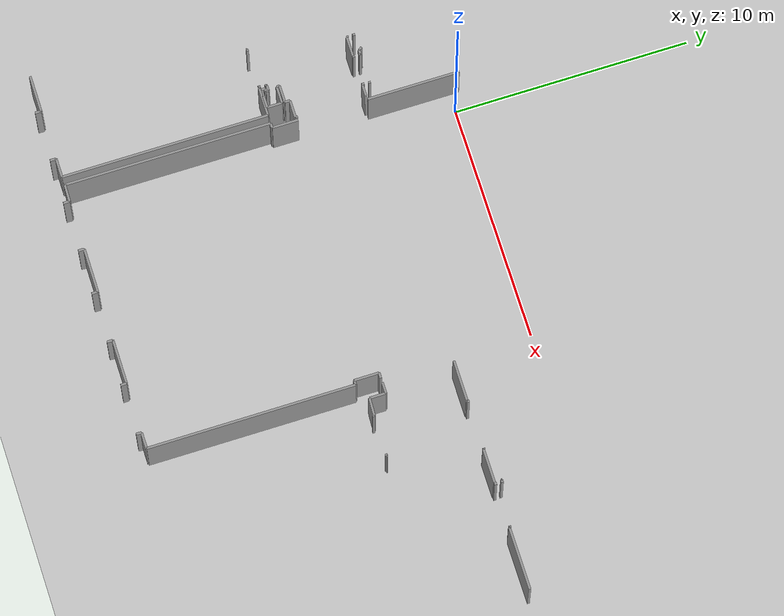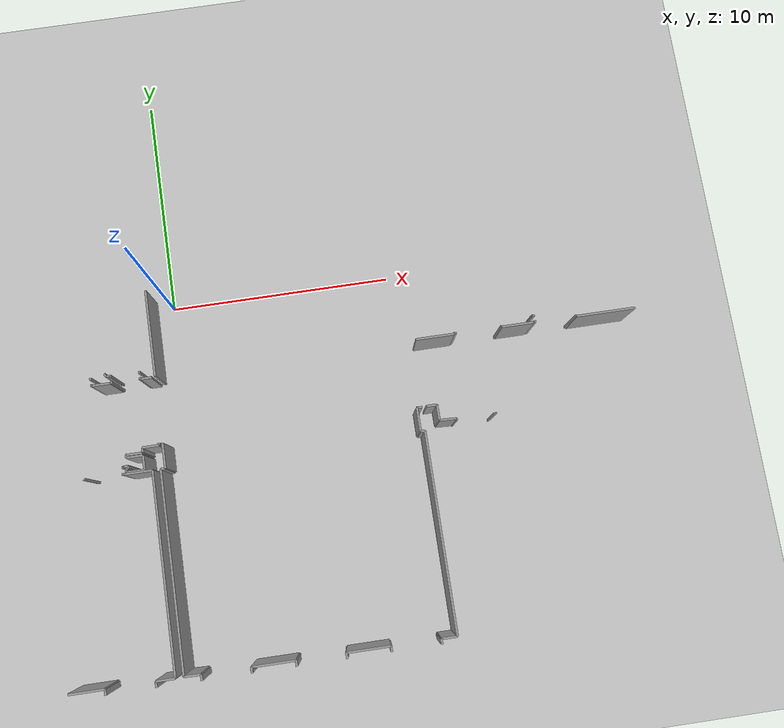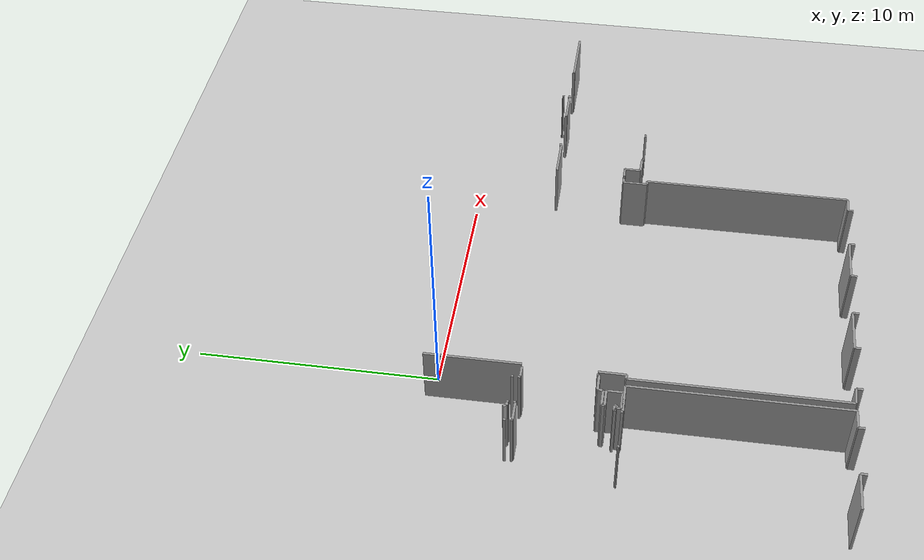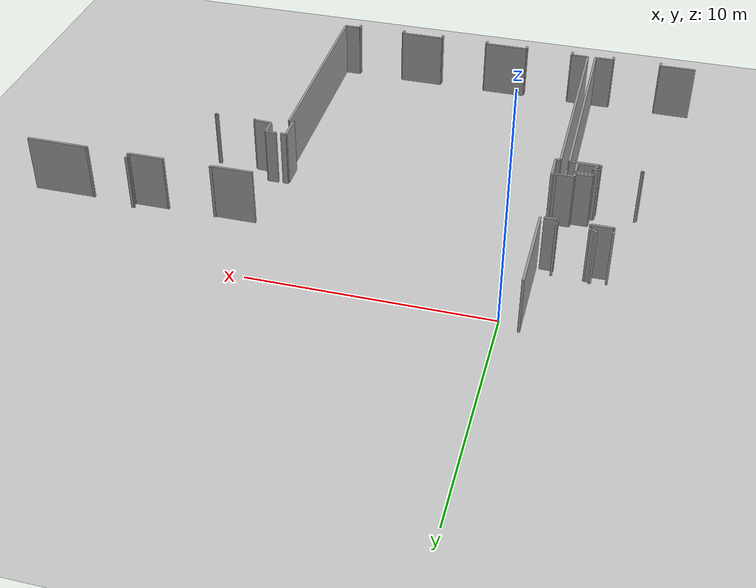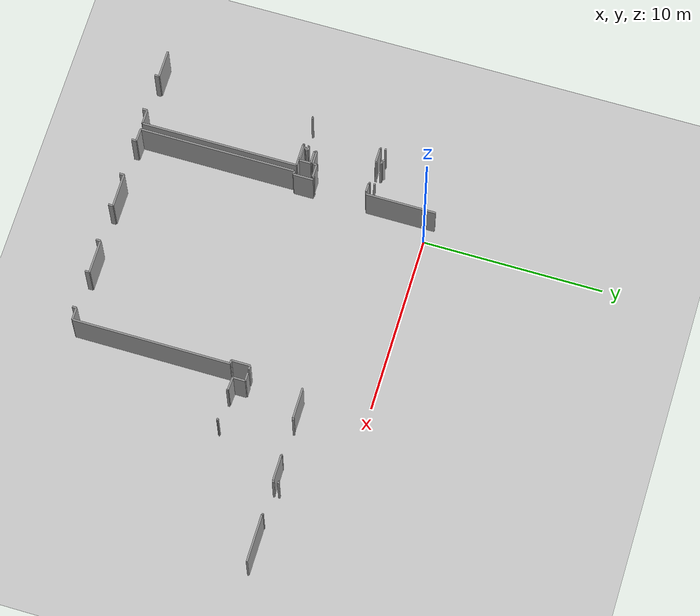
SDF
<sdf version="1.6">
 <world name="default">
  <model name="ground_plane">
   <static>1</static>
   <link name="link">
    <collision name="collision">
     <geometry><plane><normal>0 0 1</normal><size>100 100</size></plane></geometry>
     <surface><friction><ode><mu>100</mu><mu2>50</mu2></ode></friction></surface>
    </collision>
    <visual name="visual">
     <cast_shadows>0</cast_shadows>
     <geometry><plane><normal>0 0 1</normal><size>100 100</size></plane></geometry>
     <material>
      <script><uri>file://media/materials/scripts/gazebo.material</uri><name>Gazebo/Grey</name></script>
     </material>
    </visual>
   </link>
  </model>
  <model name="0510032261_A_40_1_103">
   <static>1</static>
   <link name="Wall_176">
    <collision name="Wall_176_Collision">
     <geometry><box><size>0.0726810673443 0.1 2.5</size></box></geometry>
     <pose>0.0363405336722 0 1.25 0 0 0</pose>
    </collision>
    <visual name="Wall_176_Visual">
     <pose>0.0363405336722 0 1.25 0 0 0</pose>
     <geometry><box><size>0.0726810673443 0.1 2.5</size></box></geometry>
     <material>
      <script><uri>file://media/materials/scripts/gazebo.material</uri><name>Gazebo/Grey</name></script>
      <ambient>1 1 1 1</ambient>
     </material>
    </visual>
    <pose>46.4780177891 -23.7904701398 0 0 0 0.0</pose>
   </link>
   <link name="Wall_177">
    <collision name="Wall_177_Collision">
     <geometry><box><size>0.0274459974587 0.1 2.5</size></box></geometry>
     <pose>0.0137229987294 0 1.25 0 0 0</pose>
    </collision>
    <visual name="Wall_177_Visual">
     <pose>0.0137229987294 0 1.25 0 0 0</pose>
     <geometry><box><size>0.0274459974587 0.1 2.5</size></box></geometry>
     <material>
      <script><uri>file://media/materials/scripts/gazebo.material</uri><name>Gazebo/Grey</name></script>
      <ambient>1 1 1 1</ambient>
     </material>
    </visual>
    <pose>46.5506988564 -23.7904701398 0 0 0 1.57079632679</pose>
   </link>
   <link name="Wall_178">
    <collision name="Wall_178_Collision">
     <geometry><box><size>0.203430749682 0.1 2.5</size></box></geometry>
     <pose>0.101715374841 0 1.25 0 0 0</pose>
    </collision>
    <visual name="Wall_178_Visual">
     <pose>0.101715374841 0 1.25 0 0 0</pose>
     <geometry><box><size>0.203430749682 0.1 2.5</size></box></geometry>
     <material>
      <script><uri>file://media/materials/scripts/gazebo.material</uri><name>Gazebo/Grey</name></script>
      <ambient>1 1 1 1</ambient>
     </material>
    </visual>
    <pose>46.5506988564 -23.7630241423 0 0 0 0.0</pose>
   </link>
   <link name="Wall_179">
    <collision name="Wall_179_Collision">
     <geometry><box><size>0.101778907243 0.1 2.5</size></box></geometry>
     <pose>0.0508894536213 0 1.25 0 0 0</pose>
    </collision>
    <visual name="Wall_179_Visual">
     <pose>0.0508894536213 0 1.25 0 0 0</pose>
     <geometry><box><size>0.101778907243 0.1 2.5</size></box></geometry>
     <material>
      <script><uri>file://media/materials/scripts/gazebo.material</uri><name>Gazebo/Grey</name></script>
      <ambient>1 1 1 1</ambient>
     </material>
    </visual>
    <pose>46.7541296061 -23.7630241423 0 0 0 -1.57079632679</pose>
   </link>
   <link name="Wall_180">
    <collision name="Wall_180_Collision">
     <geometry><box><size>0.109021601017 0.1 2.5</size></box></geometry>
     <pose>0.0545108005083 0 1.25 0 0 0</pose>
    </collision>
    <visual name="Wall_180_Visual">
     <pose>0.0545108005083 0 1.25 0 0 0</pose>
     <geometry><box><size>0.109021601017 0.1 2.5</size></box></geometry>
     <material>
      <script><uri>file://media/materials/scripts/gazebo.material</uri><name>Gazebo/Grey</name></script>
      <ambient>1 1 1 1</ambient>
     </material>
    </visual>
    <pose>46.7541296061 -23.8648030496 0 0 0 3.14159265359</pose>
   </link>
   <link name="Wall_181">
    <collision name="Wall_181_Collision">
     <geometry><box><size>0.159847522236 0.1 2.5</size></box></geometry>
     <pose>0.0799237611182 0 1.25 0 0 0</pose>
    </collision>
    <visual name="Wall_181_Visual">
     <pose>0.0799237611182 0 1.25 0 0 0</pose>
     <geometry><box><size>0.159847522236 0.1 2.5</size></box></geometry>
     <material>
      <script><uri>file://media/materials/scripts/gazebo.material</uri><name>Gazebo/Grey</name></script>
      <ambient>1 1 1 1</ambient>
     </material>
    </visual>
    <pose>46.6451080051 -23.8648030496 0 0 0 -1.57079632679</pose>
   </link>
   <link name="Wall_182">
    <collision name="Wall_182_Collision">
     <geometry><box><size>0.791867852605 0.1 2.5</size></box></geometry>
     <pose>0.395933926302 0 1.25 0 0 0</pose>
    </collision>
    <visual name="Wall_182_Visual">
     <pose>0.395933926302 0 1.25 0 0 0</pose>
     <geometry><box><size>0.791867852605 0.1 2.5</size></box></geometry>
     <material>
      <script><uri>file://media/materials/scripts/gazebo.material</uri><name>Gazebo/Grey</name></script>
      <ambient>1 1 1 1</ambient>
     </material>
    </visual>
    <pose>46.6451080051 -24.0246505718 0 0 0 0.0</pose>
   </link>
   <link name="Wall_183">
    <collision name="Wall_183_Collision">
     <geometry><box><size>0.632147395172 0.1 2.5</size></box></geometry>
     <pose>0.316073697586 0 1.25 0 0 0</pose>
    </collision>
    <visual name="Wall_183_Visual">
     <pose>0.316073697586 0 1.25 0 0 0</pose>
     <geometry><box><size>0.632147395172 0.1 2.5</size></box></geometry>
     <material>
      <script><uri>file://media/materials/scripts/gazebo.material</uri><name>Gazebo/Grey</name></script>
      <ambient>1 1 1 1</ambient>
     </material>
    </visual>
    <pose>47.4369758577 -24.0246505718 0 0 0 1.57079632679</pose>
   </link>
   <link name="Wall_184">
    <collision name="Wall_184_Collision">
     <geometry><box><size>0.726429479034 0.1 2.5</size></box></geometry>
     <pose>0.363214739517 0 1.25 0 0 0</pose>
    </collision>
    <visual name="Wall_184_Visual">
     <pose>0.363214739517 0 1.25 0 0 0</pose>
     <geometry><box><size>0.726429479034 0.1 2.5</size></box></geometry>
     <material>
      <script><uri>file://media/materials/scripts/gazebo.material</uri><name>Gazebo/Grey</name></script>
      <ambient>1 1 1 1</ambient>
     </material>
    </visual>
    <pose>47.4369758577 -23.3925031766 0 0 0 3.14159265359</pose>
   </link>
   <link name="Wall_185">
    <collision name="Wall_185_Collision">
     <geometry><box><size>0.11626429479 0.1 2.5</size></box></geometry>
     <pose>0.0581321473952 0 1.25 0 0 0</pose>
    </collision>
    <visual name="Wall_185_Visual">
     <pose>0.0581321473952 0 1.25 0 0 0</pose>
     <geometry><box><size>0.11626429479 0.1 2.5</size></box></geometry>
     <material>
      <script><uri>file://media/materials/scripts/gazebo.material</uri><name>Gazebo/Grey</name></script>
      <ambient>1 1 1 1</ambient>
     </material>
    </visual>
    <pose>46.7105463787 -23.3925031766 0 0 0 1.57079632679</pose>
   </link>
   <link name="Wall_186">
    <collision name="Wall_186_Collision">
     <geometry><box><size>0.726429479034 0.1 2.5</size></box></geometry>
     <pose>0.363214739517 0 1.25 0 0 0</pose>
    </collision>
    <visual name="Wall_186_Visual">
     <pose>0.363214739517 0 1.25 0 0 0</pose>
     <geometry><box><size>0.726429479034 0.1 2.5</size></box></geometry>
     <material>
      <script><uri>file://media/materials/scripts/gazebo.material</uri><name>Gazebo/Grey</name></script>
      <ambient>1 1 1 1</ambient>
     </material>
    </visual>
    <pose>46.7105463787 -23.2762388818 0 0 0 0.0</pose>
   </link>
   <link name="Wall_187">
    <collision name="Wall_187_Collision">
     <geometry><box><size>0.21791613723 0.1 2.5</size></box></geometry>
     <pose>0.108958068615 0 1.25 0 0 0</pose>
    </collision>
    <visual name="Wall_187_Visual">
     <pose>0.108958068615 0 1.25 0 0 0</pose>
     <geometry><box><size>0.21791613723 0.1 2.5</size></box></geometry>
     <material>
      <script><uri>file://media/materials/scripts/gazebo.material</uri><name>Gazebo/Grey</name></script>
      <ambient>1 1 1 1</ambient>
     </material>
    </visual>
    <pose>47.4369758577 -23.2762388818 0 0 0 1.57079632679</pose>
   </link>
   <link name="Wall_188">
    <collision name="Wall_188_Collision">
     <geometry><box><size>0.746124523507 0.1 2.5</size></box></geometry>
     <pose>0.373062261753 0 1.25 0 0 0</pose>
    </collision>
    <visual name="Wall_188_Visual">
     <pose>0.373062261753 0 1.25 0 0 0</pose>
     <geometry><box><size>0.746124523507 0.1 2.5</size></box></geometry>
     <material>
      <script><uri>file://media/materials/scripts/gazebo.material</uri><name>Gazebo/Grey</name></script>
      <ambient>1 1 1 1</ambient>
     </material>
    </visual>
    <pose>47.4369758577 -23.0583227446 0 0 0 0.0</pose>
   </link>
   <link name="Wall_189">
    <collision name="Wall_189_Collision">
     <geometry><box><size>0.0987293519695 0.1 2.5</size></box></geometry>
     <pose>0.0493646759847 0 1.25 0 0 0</pose>
    </collision>
    <visual name="Wall_189_Visual">
     <pose>0.0493646759847 0 1.25 0 0 0</pose>
     <geometry><box><size>0.0987293519695 0.1 2.5</size></box></geometry>
     <material>
      <script><uri>file://media/materials/scripts/gazebo.material</uri><name>Gazebo/Grey</name></script>
      <ambient>1 1 1 1</ambient>
     </material>
    </visual>
    <pose>48.1831003812 -23.0583227446 0 0 0 1.57079632679</pose>
   </link>
   <link name="Wall_190">
    <collision name="Wall_190_Collision">
     <geometry><box><size>0.477890724269 0.1 2.5</size></box></geometry>
     <pose>0.238945362135 0 1.25 0 0 0</pose>
    </collision>
    <visual name="Wall_190_Visual">
     <pose>0.238945362135 0 1.25 0 0 0</pose>
     <geometry><box><size>0.477890724269 0.1 2.5</size></box></geometry>
     <material>
      <script><uri>file://media/materials/scripts/gazebo.material</uri><name>Gazebo/Grey</name></script>
      <ambient>1 1 1 1</ambient>
     </material>
    </visual>
    <pose>48.1831003812 -20.0550190597 0 0 0 3.14159265359</pose>
   </link>
   <link name="Wall_191">
    <collision name="Wall_191_Collision">
     <geometry><box><size>0.033418043202 0.1 2.5</size></box></geometry>
     <pose>0.016709021601 0 1.25 0 0 0</pose>
    </collision>
    <visual name="Wall_191_Visual">
     <pose>0.016709021601 0 1.25 0 0 0</pose>
     <geometry><box><size>0.033418043202 0.1 2.5</size></box></geometry>
     <material>
      <script><uri>file://media/materials/scripts/gazebo.material</uri><name>Gazebo/Grey</name></script>
      <ambient>1 1 1 1</ambient>
     </material>
    </visual>
    <pose>47.7052096569 -20.0550190597 0 0 0 1.57079632679</pose>
   </link>
   <link name="Wall_192">
    <collision name="Wall_192_Collision">
     <geometry><box><size>0.0955527318933 0.1 2.5</size></box></geometry>
     <pose>0.0477763659466 0 1.25 0 0 0</pose>
    </collision>
    <visual name="Wall_192_Visual">
     <pose>0.0477763659466 0 1.25 0 0 0</pose>
     <geometry><box><size>0.0955527318933 0.1 2.5</size></box></geometry>
     <material>
      <script><uri>file://media/materials/scripts/gazebo.material</uri><name>Gazebo/Grey</name></script>
      <ambient>1 1 1 1</ambient>
     </material>
    </visual>
    <pose>47.7052096569 -20.0216010165 0 0 0 3.14159265359</pose>
   </link>
   <link name="Wall_193">
    <collision name="Wall_193_Collision">
     <geometry><box><size>0.0758576874206 0.1 2.5</size></box></geometry>
     <pose>0.0379288437103 0 1.25 0 0 0</pose>
    </collision>
    <visual name="Wall_193_Visual">
     <pose>0.0379288437103 0 1.25 0 0 0</pose>
     <geometry><box><size>0.0758576874206 0.1 2.5</size></box></geometry>
     <material>
      <script><uri>file://media/materials/scripts/gazebo.material</uri><name>Gazebo/Grey</name></script>
      <ambient>1 1 1 1</ambient>
     </material>
    </visual>
    <pose>46.4513341804 -20.0216010165 0 0 0 3.14159265359</pose>
   </link>
   <link name="Wall_194">
    <collision name="Wall_194_Collision">
     <geometry><box><size>0.0283354510801 0.1 2.5</size></box></geometry>
     <pose>0.01416772554 0 1.25 0 0 0</pose>
    </collision>
    <visual name="Wall_194_Visual">
     <pose>0.01416772554 0 1.25 0 0 0</pose>
     <geometry><box><size>0.0283354510801 0.1 2.5</size></box></geometry>
     <material>
      <script><uri>file://media/materials/scripts/gazebo.material</uri><name>Gazebo/Grey</name></script>
      <ambient>1 1 1 1</ambient>
     </material>
    </visual>
    <pose>46.375476493 -20.0216010165 0 0 0 -1.57079632679</pose>
   </link>
   <link name="Wall_195">
    <collision name="Wall_195_Collision">
     <geometry><box><size>0.82706480305 0.1 2.5</size></box></geometry>
     <pose>0.413532401525 0 1.25 0 0 0</pose>
    </collision>
    <visual name="Wall_195_Visual">
     <pose>0.413532401525 0 1.25 0 0 0</pose>
     <geometry><box><size>0.82706480305 0.1 2.5</size></box></geometry>
     <material>
      <script><uri>file://media/materials/scripts/gazebo.material</uri><name>Gazebo/Grey</name></script>
      <ambient>1 1 1 1</ambient>
     </material>
    </visual>
    <pose>46.375476493 -20.0499364676 0 0 0 3.14159265359</pose>
   </link>
   <link name="Wall_196">
    <collision name="Wall_196_Collision">
     <geometry><box><size>0.0325285895807 0.1 2.5</size></box></geometry>
     <pose>0.0162642947903 0 1.25 0 0 0</pose>
    </collision>
    <visual name="Wall_196_Visual">
     <pose>0.0162642947903 0 1.25 0 0 0</pose>
     <geometry><box><size>0.0325285895807 0.1 2.5</size></box></geometry>
     <material>
      <script><uri>file://media/materials/scripts/gazebo.material</uri><name>Gazebo/Grey</name></script>
      <ambient>1 1 1 1</ambient>
     </material>
    </visual>
    <pose>45.54841169 -20.0499364676 0 0 0 1.57079632679</pose>
   </link>
   <link name="Wall_197">
    <collision name="Wall_197_Collision">
     <geometry><box><size>0.0650571791614 0.1 2.5</size></box></geometry>
     <pose>0.0325285895807 0 1.25 0 0 0</pose>
    </collision>
    <visual name="Wall_197_Visual">
     <pose>0.0325285895807 0 1.25 0 0 0</pose>
     <geometry><box><size>0.0650571791614 0.1 2.5</size></box></geometry>
     <material>
      <script><uri>file://media/materials/scripts/gazebo.material</uri><name>Gazebo/Grey</name></script>
      <ambient>1 1 1 1</ambient>
     </material>
    </visual>
    <pose>45.54841169 -20.017407878 0 0 0 3.14159265359</pose>
   </link>
   <link name="Wall_294">
    <collision name="Wall_294_Collision">
     <geometry><box><size>0.0330368487929 0.1 2.5</size></box></geometry>
     <pose>0.0165184243964 0 1.25 0 0 0</pose>
    </collision>
    <visual name="Wall_294_Visual">
     <pose>0.0165184243964 0 1.25 0 0 0</pose>
     <geometry><box><size>0.0330368487929 0.1 2.5</size></box></geometry>
     <material>
      <script><uri>file://media/materials/scripts/gazebo.material</uri><name>Gazebo/Grey</name></script>
      <ambient>1 1 1 1</ambient>
     </material>
    </visual>
    <pose>44.8108005083 -24.1041931385 0 0 0 1.57079632679</pose>
   </link>
   <link name="Wall_295">
    <collision name="Wall_295_Collision">
     <geometry><box><size>0.0955527318932 0.1 2.5</size></box></geometry>
     <pose>0.0477763659466 0 1.25 0 0 0</pose>
    </collision>
    <visual name="Wall_295_Visual">
     <pose>0.0477763659466 0 1.25 0 0 0</pose>
     <geometry><box><size>0.0955527318932 0.1 2.5</size></box></geometry>
     <material>
      <script><uri>file://media/materials/scripts/gazebo.material</uri><name>Gazebo/Grey</name></script>
      <ambient>1 1 1 1</ambient>
     </material>
    </visual>
    <pose>44.8108005083 -24.0711562897 0 0 0 0.0</pose>
   </link>
   <link name="Wall_296">
    <collision name="Wall_296_Collision">
     <geometry><box><size>0.0902160101652 0.1 2.5</size></box></geometry>
     <pose>0.0451080050826 0 1.25 0 0 0</pose>
    </collision>
    <visual name="Wall_296_Visual">
     <pose>0.0451080050826 0 1.25 0 0 0</pose>
     <geometry><box><size>0.0902160101652 0.1 2.5</size></box></geometry>
     <material>
      <script><uri>file://media/materials/scripts/gazebo.material</uri><name>Gazebo/Grey</name></script>
      <ambient>1 1 1 1</ambient>
     </material>
    </visual>
    <pose>46.4510800508 -24.0711562897 0 0 0 0.0</pose>
   </link>
   <link name="Wall_297">
    <collision name="Wall_297_Collision">
     <geometry><box><size>0.0208386277001 0.1 2.5</size></box></geometry>
     <pose>0.0104193138501 0 1.25 0 0 0</pose>
    </collision>
    <visual name="Wall_297_Visual">
     <pose>0.0104193138501 0 1.25 0 0 0</pose>
     <geometry><box><size>0.0208386277001 0.1 2.5</size></box></geometry>
     <material>
      <script><uri>file://media/materials/scripts/gazebo.material</uri><name>Gazebo/Grey</name></script>
      <ambient>1 1 1 1</ambient>
     </material>
    </visual>
    <pose>46.541296061 -24.0711562897 0 0 0 -1.57079632679</pose>
   </link>
   <link name="Wall_298">
    <collision name="Wall_298_Collision">
     <geometry><box><size>1.23024142313 0.1 2.5</size></box></geometry>
     <pose>0.615120711563 0 1.25 0 0 0</pose>
    </collision>
    <visual name="Wall_298_Visual">
     <pose>0.615120711563 0 1.25 0 0 0</pose>
     <geometry><box><size>1.23024142313 0.1 2.5</size></box></geometry>
     <material>
      <script><uri>file://media/materials/scripts/gazebo.material</uri><name>Gazebo/Grey</name></script>
      <ambient>1 1 1 1</ambient>
     </material>
    </visual>
    <pose>46.541296061 -24.0919949174 0 0 0 0.0</pose>
   </link>
   <link name="Wall_299">
    <collision name="Wall_299_Collision">
     <geometry><box><size>8.71867852605 0.1 2.5</size></box></geometry>
     <pose>4.35933926302 0 1.25 0 0 0</pose>
    </collision>
    <visual name="Wall_299_Visual">
     <pose>4.35933926302 0 1.25 0 0 0</pose>
     <geometry><box><size>8.71867852605 0.1 2.5</size></box></geometry>
     <material>
      <script><uri>file://media/materials/scripts/gazebo.material</uri><name>Gazebo/Grey</name></script>
      <ambient>1 1 1 1</ambient>
     </material>
    </visual>
    <pose>47.7715374841 -24.0919949174 0 0 0 -1.57079632679</pose>
   </link>
   <link name="Wall_300">
    <collision name="Wall_300_Collision">
     <geometry><box><size>0.813214739517 0.1 2.5</size></box></geometry>
     <pose>0.406607369759 0 1.25 0 0 0</pose>
    </collision>
    <visual name="Wall_300_Visual">
     <pose>0.406607369759 0 1.25 0 0 0</pose>
     <geometry><box><size>0.813214739517 0.1 2.5</size></box></geometry>
     <material>
      <script><uri>file://media/materials/scripts/gazebo.material</uri><name>Gazebo/Grey</name></script>
      <ambient>1 1 1 1</ambient>
     </material>
    </visual>
    <pose>47.7715374841 -32.8106734435 0 0 0 3.14159265359</pose>
   </link>
   <link name="Wall_301">
    <collision name="Wall_301_Collision">
     <geometry><box><size>0.257560355781 0.1 2.5</size></box></geometry>
     <pose>0.128780177891 0 1.25 0 0 0</pose>
    </collision>
    <visual name="Wall_301_Visual">
     <pose>0.128780177891 0 1.25 0 0 0</pose>
     <geometry><box><size>0.257560355781 0.1 2.5</size></box></geometry>
     <material>
      <script><uri>file://media/materials/scripts/gazebo.material</uri><name>Gazebo/Grey</name></script>
      <ambient>1 1 1 1</ambient>
     </material>
    </visual>
    <pose>46.9583227446 -32.8106734435 0 0 0 -1.57079632679</pose>
   </link>
   <link name="Wall_302">
    <collision name="Wall_302_Collision">
     <geometry><box><size>0.253621346887 0.1 2.5</size></box></geometry>
     <pose>0.126810673443 0 1.25 0 0 0</pose>
    </collision>
    <visual name="Wall_302_Visual">
     <pose>0.126810673443 0 1.25 0 0 0</pose>
     <geometry><box><size>0.253621346887 0.1 2.5</size></box></geometry>
     <material>
      <script><uri>file://media/materials/scripts/gazebo.material</uri><name>Gazebo/Grey</name></script>
      <ambient>1 1 1 1</ambient>
     </material>
    </visual>
    <pose>44.8331639136 -33.0682337992 0 0 0 1.57079632679</pose>
   </link>
   <link name="Wall_303">
    <collision name="Wall_303_Collision">
     <geometry><box><size>1.55667090216 0.1 2.5</size></box></geometry>
     <pose>0.77833545108 0 1.25 0 0 0</pose>
    </collision>
    <visual name="Wall_303_Visual">
     <pose>0.77833545108 0 1.25 0 0 0</pose>
     <geometry><box><size>1.55667090216 0.1 2.5</size></box></geometry>
     <material>
      <script><uri>file://media/materials/scripts/gazebo.material</uri><name>Gazebo/Grey</name></script>
      <ambient>1 1 1 1</ambient>
     </material>
    </visual>
    <pose>44.8331639136 -32.8146124524 0 0 0 3.14159265359</pose>
   </link>
   <link name="Wall_330">
    <collision name="Wall_330_Collision">
     <geometry><box><size>0.0939008894536 0.1 2.5</size></box></geometry>
     <pose>0.0469504447268 0 1.25 0 0 0</pose>
    </collision>
    <visual name="Wall_330_Visual">
     <pose>0.0469504447268 0 1.25 0 0 0</pose>
     <geometry><box><size>0.0939008894536 0.1 2.5</size></box></geometry>
     <material>
      <script><uri>file://media/materials/scripts/gazebo.material</uri><name>Gazebo/Grey</name></script>
      <ambient>1 1 1 1</ambient>
     </material>
    </visual>
    <pose>45.566454892 -19.7465057179 0 0 0 3.14159265359</pose>
   </link>
   <link name="Wall_346">
    <collision name="Wall_346_Collision">
     <geometry><box><size>0.0903430749682 0.1 2.5</size></box></geometry>
     <pose>0.0451715374841 0 1.25 0 0 0</pose>
    </collision>
    <visual name="Wall_346_Visual">
     <pose>0.0451715374841 0 1.25 0 0 0</pose>
     <geometry><box><size>0.0903430749682 0.1 2.5</size></box></geometry>
     <material>
      <script><uri>file://media/materials/scripts/gazebo.material</uri><name>Gazebo/Grey</name></script>
      <ambient>1 1 1 1</ambient>
     </material>
    </visual>
    <pose>47.708386277 -19.7500635324 0 0 0 3.14159265359</pose>
   </link>
   <link name="Wall_347">
    <collision name="Wall_347_Collision">
     <geometry><box><size>0.0721728081321 0.1 2.5</size></box></geometry>
     <pose>0.0360864040661 0 1.25 0 0 0</pose>
    </collision>
    <visual name="Wall_347_Visual">
     <pose>0.0360864040661 0 1.25 0 0 0</pose>
     <geometry><box><size>0.0721728081321 0.1 2.5</size></box></geometry>
     <material>
      <script><uri>file://media/materials/scripts/gazebo.material</uri><name>Gazebo/Grey</name></script>
      <ambient>1 1 1 1</ambient>
     </material>
    </visual>
    <pose>46.4405336722 -19.7500635324 0 0 0 3.14159265359</pose>
   </link>
   <link name="Wall_348">
    <collision name="Wall_348_Collision">
     <geometry><box><size>0.018043202033 0.1 2.5</size></box></geometry>
     <pose>0.00902160101651 0 1.25 0 0 0</pose>
    </collision>
    <visual name="Wall_348_Visual">
     <pose>0.00902160101651 0 1.25 0 0 0</pose>
     <geometry><box><size>0.018043202033 0.1 2.5</size></box></geometry>
     <material>
      <script><uri>file://media/materials/scripts/gazebo.material</uri><name>Gazebo/Grey</name></script>
      <ambient>1 1 1 1</ambient>
     </material>
    </visual>
    <pose>46.368360864 -19.7500635324 0 0 0 1.57079632679</pose>
   </link>
   <link name="Wall_349">
    <collision name="Wall_349_Collision">
     <geometry><box><size>0.148157560356 0.1 2.5</size></box></geometry>
     <pose>0.0740787801779 0 1.25 0 0 0</pose>
    </collision>
    <visual name="Wall_349_Visual">
     <pose>0.0740787801779 0 1.25 0 0 0</pose>
     <geometry><box><size>0.148157560356 0.1 2.5</size></box></geometry>
     <material>
      <script><uri>file://media/materials/scripts/gazebo.material</uri><name>Gazebo/Grey</name></script>
      <ambient>1 1 1 1</ambient>
     </material>
    </visual>
    <pose>46.368360864 -19.7320203304 0 0 0 3.14159265359</pose>
   </link>
   <link name="Wall_350">
    <collision name="Wall_350_Collision">
     <geometry><box><size>0.15129470091 0.1 2.5</size></box></geometry>
     <pose>0.0756473504552 0 1.25 0 0 0</pose>
    </collision>
    <visual name="Wall_350_Visual">
     <pose>0.0756473504552 0 1.25 0 0 0</pose>
     <geometry><box><size>0.15129470091 0.1 2.5</size></box></geometry>
     <material>
      <script><uri>file://media/materials/scripts/gazebo.material</uri><name>Gazebo/Grey</name></script>
      <ambient>1 1 1 1</ambient>
     </material>
    </visual>
    <pose>46.2202033037 -19.7320203304 0 0 0 2.15227677731</pose>
   </link>
   <link name="Wall_352">
    <collision name="Wall_352_Collision">
     <geometry><box><size>8.69517153748 0.1 2.5</size></box></geometry>
     <pose>4.34758576874 0 1.25 0 0 0</pose>
    </collision>
    <visual name="Wall_352_Visual">
     <pose>4.34758576874 0 1.25 0 0 0</pose>
     <geometry><box><size>8.69517153748 0.1 2.5</size></box></geometry>
     <material>
      <script><uri>file://media/materials/scripts/gazebo.material</uri><name>Gazebo/Grey</name></script>
      <ambient>1 1 1 1</ambient>
     </material>
    </visual>
    <pose>48.1255400254 -32.7884371029 0 0 0 1.57079632679</pose>
   </link>
   <link name="Wall_353">
    <collision name="Wall_353_Collision">
     <geometry><box><size>0.201778907243 0.1 2.5</size></box></geometry>
     <pose>0.100889453621 0 1.25 0 0 0</pose>
    </collision>
    <visual name="Wall_353_Visual">
     <pose>0.100889453621 0 1.25 0 0 0</pose>
     <geometry><box><size>0.201778907243 0.1 2.5</size></box></geometry>
     <material>
      <script><uri>file://media/materials/scripts/gazebo.material</uri><name>Gazebo/Grey</name></script>
      <ambient>1 1 1 1</ambient>
     </material>
    </visual>
    <pose>48.1255400254 -24.0932655654 0 0 0 0.0</pose>
   </link>
   <link name="Wall_354">
    <collision name="Wall_354_Collision">
     <geometry><box><size>1.10495552732 0.1 2.5</size></box></geometry>
     <pose>0.552477763659 0 1.25 0 0 0</pose>
    </collision>
    <visual name="Wall_354_Visual">
     <pose>0.552477763659 0 1.25 0 0 0</pose>
     <geometry><box><size>1.10495552732 0.1 2.5</size></box></geometry>
     <material>
      <script><uri>file://media/materials/scripts/gazebo.material</uri><name>Gazebo/Grey</name></script>
      <ambient>1 1 1 1</ambient>
     </material>
    </visual>
    <pose>48.3273189327 -24.0932655654 0 0 0 1.57079632679</pose>
   </link>
   <link name="Wall_355">
    <collision name="Wall_355_Collision">
     <geometry><box><size>3.89199491741 0.1 2.5</size></box></geometry>
     <pose>1.9459974587 0 1.25 0 0 0</pose>
    </collision>
    <visual name="Wall_355_Visual">
     <pose>1.9459974587 0 1.25 0 0 0</pose>
     <geometry><box><size>3.89199491741 0.1 2.5</size></box></geometry>
     <material>
      <script><uri>file://media/materials/scripts/gazebo.material</uri><name>Gazebo/Grey</name></script>
      <ambient>1 1 1 1</ambient>
     </material>
    </visual>
    <pose>48.3273189327 -20.0252858958 0 0 0 1.57079632679</pose>
   </link>
   <link name="Wall_369">
    <collision name="Wall_369_Collision">
     <geometry><box><size>0.236848792884 0.1 2.5</size></box></geometry>
     <pose>0.118424396442 0 1.25 0 0 0</pose>
    </collision>
    <visual name="Wall_369_Visual">
     <pose>0.118424396442 0 1.25 0 0 0</pose>
     <geometry><box><size>0.236848792884 0.1 2.5</size></box></geometry>
     <material>
      <script><uri>file://media/materials/scripts/gazebo.material</uri><name>Gazebo/Grey</name></script>
      <ambient>1 1 1 1</ambient>
     </material>
    </visual>
    <pose>59.7021601017 -23.0659466328 0 0 0 3.14159265359</pose>
   </link>
   <link name="Wall_370">
    <collision name="Wall_370_Collision">
     <geometry><box><size>1.03837357052 0.1 2.5</size></box></geometry>
     <pose>0.51918678526 0 1.25 0 0 0</pose>
    </collision>
    <visual name="Wall_370_Visual">
     <pose>0.51918678526 0 1.25 0 0 0</pose>
     <geometry><box><size>1.03837357052 0.1 2.5</size></box></geometry>
     <material>
      <script><uri>file://media/materials/scripts/gazebo.material</uri><name>Gazebo/Grey</name></script>
      <ambient>1 1 1 1</ambient>
     </material>
    </visual>
    <pose>59.4653113088 -23.0659466328 0 0 0 -1.57079632679</pose>
   </link>
   <link name="Wall_371">
    <collision name="Wall_371_Collision">
     <geometry><box><size>0.191105463787 0.1 2.5</size></box></geometry>
     <pose>0.0955527318933 0 1.25 0 0 0</pose>
    </collision>
    <visual name="Wall_371_Visual">
     <pose>0.0955527318933 0 1.25 0 0 0</pose>
     <geometry><box><size>0.191105463787 0.1 2.5</size></box></geometry>
     <material>
      <script><uri>file://media/materials/scripts/gazebo.material</uri><name>Gazebo/Grey</name></script>
      <ambient>1 1 1 1</ambient>
     </material>
    </visual>
    <pose>59.4653113088 -24.1043202033 0 0 0 0.0</pose>
   </link>
   <link name="Wall_372">
    <collision name="Wall_372_Collision">
     <geometry><box><size>8.73049555273 0.1 2.5</size></box></geometry>
     <pose>4.36524777637 0 1.25 0 0 0</pose>
    </collision>
    <visual name="Wall_372_Visual">
     <pose>4.36524777637 0 1.25 0 0 0</pose>
     <geometry><box><size>8.73049555273 0.1 2.5</size></box></geometry>
     <material>
      <script><uri>file://media/materials/scripts/gazebo.material</uri><name>Gazebo/Grey</name></script>
      <ambient>1 1 1 1</ambient>
     </material>
    </visual>
    <pose>59.6564167726 -24.1043202033 0 0 0 -1.57079632679</pose>
   </link>
   <link name="Wall_373">
    <collision name="Wall_373_Collision">
     <geometry><box><size>0.685387547649 0.1 2.5</size></box></geometry>
     <pose>0.342693773825 0 1.25 0 0 0</pose>
    </collision>
    <visual name="Wall_373_Visual">
     <pose>0.342693773825 0 1.25 0 0 0</pose>
     <geometry><box><size>0.685387547649 0.1 2.5</size></box></geometry>
     <material>
      <script><uri>file://media/materials/scripts/gazebo.material</uri><name>Gazebo/Grey</name></script>
      <ambient>1 1 1 1</ambient>
     </material>
    </visual>
    <pose>59.6564167726 -32.834815756 0 0 0 3.14159265359</pose>
   </link>
   <link name="Wall_374">
    <collision name="Wall_374_Collision">
     <geometry><box><size>0.229224904701 0.1 2.5</size></box></geometry>
     <pose>0.114612452351 0 1.25 0 0 0</pose>
    </collision>
    <visual name="Wall_374_Visual">
     <pose>0.114612452351 0 1.25 0 0 0</pose>
     <geometry><box><size>0.229224904701 0.1 2.5</size></box></geometry>
     <material>
      <script><uri>file://media/materials/scripts/gazebo.material</uri><name>Gazebo/Grey</name></script>
      <ambient>1 1 1 1</ambient>
     </material>
    </visual>
    <pose>58.9710292249 -32.834815756 0 0 0 -1.57079632679</pose>
   </link>
   <link name="Wall_375">
    <collision name="Wall_375_Collision">
     <geometry><box><size>0.245870393901 0.1 2.5</size></box></geometry>
     <pose>0.12293519695 0 1.25 0 0 0</pose>
    </collision>
    <visual name="Wall_375_Visual">
     <pose>0.12293519695 0 1.25 0 0 0</pose>
     <geometry><box><size>0.245870393901 0.1 2.5</size></box></geometry>
     <material>
      <script><uri>file://media/materials/scripts/gazebo.material</uri><name>Gazebo/Grey</name></script>
      <ambient>1 1 1 1</ambient>
     </material>
    </visual>
    <pose>56.8430749682 -33.0640406607 0 0 0 1.57079632679</pose>
   </link>
   <link name="Wall_376">
    <collision name="Wall_376_Collision">
     <geometry><box><size>1.88043202033 0.1 2.5</size></box></geometry>
     <pose>0.940216010165 0 1.25 0 0 0</pose>
    </collision>
    <visual name="Wall_376_Visual">
     <pose>0.940216010165 0 1.25 0 0 0</pose>
     <geometry><box><size>1.88043202033 0.1 2.5</size></box></geometry>
     <material>
      <script><uri>file://media/materials/scripts/gazebo.material</uri><name>Gazebo/Grey</name></script>
      <ambient>1 1 1 1</ambient>
     </material>
    </visual>
    <pose>56.8430749682 -32.8181702668 0 0 0 3.14159265359</pose>
   </link>
   <link name="Wall_377">
    <collision name="Wall_377_Collision">
     <geometry><box><size>0.254129606099 0.1 2.5</size></box></geometry>
     <pose>0.12706480305 0 1.25 0 0 0</pose>
    </collision>
    <visual name="Wall_377_Visual">
     <pose>0.12706480305 0 1.25 0 0 0</pose>
     <geometry><box><size>0.254129606099 0.1 2.5</size></box></geometry>
     <material>
      <script><uri>file://media/materials/scripts/gazebo.material</uri><name>Gazebo/Grey</name></script>
      <ambient>1 1 1 1</ambient>
     </material>
    </visual>
    <pose>54.9626429479 -32.8181702668 0 0 0 -1.57079632679</pose>
   </link>
   <link name="Wall_378">
    <collision name="Wall_378_Collision">
     <geometry><box><size>0.254129606099 0.1 2.5</size></box></geometry>
     <pose>0.12706480305 0 1.25 0 0 0</pose>
    </collision>
    <visual name="Wall_378_Visual">
     <pose>0.12706480305 0 1.25 0 0 0</pose>
     <geometry><box><size>0.254129606099 0.1 2.5</size></box></geometry>
     <material>
      <script><uri>file://media/materials/scripts/gazebo.material</uri><name>Gazebo/Grey</name></script>
      <ambient>1 1 1 1</ambient>
     </material>
    </visual>
    <pose>52.8409148666 -33.0722998729 0 0 0 1.57079632679</pose>
   </link>
   <link name="Wall_379">
    <collision name="Wall_379_Collision">
     <geometry><box><size>1.88538754765 0.1 2.5</size></box></geometry>
     <pose>0.942693773825 0 1.25 0 0 0</pose>
    </collision>
    <visual name="Wall_379_Visual">
     <pose>0.942693773825 0 1.25 0 0 0</pose>
     <geometry><box><size>1.88538754765 0.1 2.5</size></box></geometry>
     <material>
      <script><uri>file://media/materials/scripts/gazebo.material</uri><name>Gazebo/Grey</name></script>
      <ambient>1 1 1 1</ambient>
     </material>
    </visual>
    <pose>52.8409148666 -32.8181702668 0 0 0 3.14159265359</pose>
   </link>
   <link name="Wall_380">
    <collision name="Wall_380_Collision">
     <geometry><box><size>0.252858958069 0.1 2.5</size></box></geometry>
     <pose>0.126429479034 0 1.25 0 0 0</pose>
    </collision>
    <visual name="Wall_380_Visual">
     <pose>0.126429479034 0 1.25 0 0 0</pose>
     <geometry><box><size>0.252858958069 0.1 2.5</size></box></geometry>
     <material>
      <script><uri>file://media/materials/scripts/gazebo.material</uri><name>Gazebo/Grey</name></script>
      <ambient>1 1 1 1</ambient>
     </material>
    </visual>
    <pose>50.9555273189 -32.8181702668 0 0 0 -1.57079632679</pose>
   </link>
   <link name="Wall_381">
    <collision name="Wall_381_Collision">
     <geometry><box><size>0.263278271919 0.1 2.5</size></box></geometry>
     <pose>0.131639135959 0 1.25 0 0 0</pose>
    </collision>
    <visual name="Wall_381_Visual">
     <pose>0.131639135959 0 1.25 0 0 0</pose>
     <geometry><box><size>0.263278271919 0.1 2.5</size></box></geometry>
     <material>
      <script><uri>file://media/materials/scripts/gazebo.material</uri><name>Gazebo/Grey</name></script>
      <ambient>1 1 1 1</ambient>
     </material>
    </visual>
    <pose>48.8517153748 -33.0710292249 0 0 0 1.57079632679</pose>
   </link>
   <link name="Wall_382">
    <collision name="Wall_382_Collision">
     <geometry><box><size>0.726432146123 0.1 2.5</size></box></geometry>
     <pose>0.363216073062 0 1.25 0 0 0</pose>
    </collision>
    <visual name="Wall_382_Visual">
     <pose>0.363216073062 0 1.25 0 0 0</pose>
     <geometry><box><size>0.726432146123 0.1 2.5</size></box></geometry>
     <material>
      <script><uri>file://media/materials/scripts/gazebo.material</uri><name>Gazebo/Grey</name></script>
      <ambient>1 1 1 1</ambient>
     </material>
    </visual>
    <pose>48.8517153748 -32.807750953 0 0 0 3.11500224686</pose>
   </link>
   <link name="Wall_444">
    <collision name="Wall_444_Collision">
     <geometry><box><size>0.113087674714 0.1 2.5</size></box></geometry>
     <pose>0.0565438373571 0 1.25 0 0 0</pose>
    </collision>
    <visual name="Wall_444_Visual">
     <pose>0.0565438373571 0 1.25 0 0 0</pose>
     <geometry><box><size>0.113087674714 0.1 2.5</size></box></geometry>
     <material>
      <script><uri>file://media/materials/scripts/gazebo.material</uri><name>Gazebo/Grey</name></script>
      <ambient>1 1 1 1</ambient>
     </material>
    </visual>
    <pose>65.2561626429 -19.7504447268 0 0 0 3.14159265359</pose>
   </link>
   <link name="Wall_445">
    <collision name="Wall_445_Collision">
     <geometry><box><size>0.02833545108 0.1 2.5</size></box></geometry>
     <pose>0.01416772554 0 1.25 0 0 0</pose>
    </collision>
    <visual name="Wall_445_Visual">
     <pose>0.01416772554 0 1.25 0 0 0</pose>
     <geometry><box><size>0.02833545108 0.1 2.5</size></box></geometry>
     <material>
      <script><uri>file://media/materials/scripts/gazebo.material</uri><name>Gazebo/Grey</name></script>
      <ambient>1 1 1 1</ambient>
     </material>
    </visual>
    <pose>65.1430749682 -19.7504447268 0 0 0 1.57079632679</pose>
   </link>
   <link name="Wall_555">
    <collision name="Wall_555_Collision">
     <geometry><box><size>0.68665819568 0.1 2.5</size></box></geometry>
     <pose>0.34332909784 0 1.25 0 0 0</pose>
    </collision>
    <visual name="Wall_555_Visual">
     <pose>0.34332909784 0 1.25 0 0 0</pose>
     <geometry><box><size>0.68665819568 0.1 2.5</size></box></geometry>
     <material>
      <script><uri>file://media/materials/scripts/gazebo.material</uri><name>Gazebo/Grey</name></script>
      <ambient>1 1 1 1</ambient>
     </material>
    </visual>
    <pose>60.3504447268 -23.7439644219 0 0 0 1.57079632679</pose>
   </link>
   <link name="Wall_556">
    <collision name="Wall_556_Collision">
     <geometry><box><size>0.461499364676 0.1 2.5</size></box></geometry>
     <pose>0.230749682338 0 1.25 0 0 0</pose>
    </collision>
    <visual name="Wall_556_Visual">
     <pose>0.230749682338 0 1.25 0 0 0</pose>
     <geometry><box><size>0.461499364676 0.1 2.5</size></box></geometry>
     <material>
      <script><uri>file://media/materials/scripts/gazebo.material</uri><name>Gazebo/Grey</name></script>
      <ambient>1 1 1 1</ambient>
     </material>
    </visual>
    <pose>60.3504447268 -23.0573062262 0 0 0 3.14159265359</pose>
   </link>
   <link name="Wall_557">
    <collision name="Wall_557_Collision">
     <geometry><box><size>1.71181702668 0.1 2.5</size></box></geometry>
     <pose>0.855908513342 0 1.25 0 0 0</pose>
    </collision>
    <visual name="Wall_557_Visual">
     <pose>0.855908513342 0 1.25 0 0 0</pose>
     <geometry><box><size>1.71181702668 0.1 2.5</size></box></geometry>
     <material>
      <script><uri>file://media/materials/scripts/gazebo.material</uri><name>Gazebo/Grey</name></script>
      <ambient>1 1 1 1</ambient>
     </material>
    </visual>
    <pose>59.8889453621 -20.0585768742 0 0 0 0.0</pose>
   </link>
   <link name="Wall_558">
    <collision name="Wall_558_Collision">
     <geometry><box><size>0.0301143583227 0.1 2.5</size></box></geometry>
     <pose>0.0150571791614 0 1.25 0 0 0</pose>
    </collision>
    <visual name="Wall_558_Visual">
     <pose>0.0150571791614 0 1.25 0 0 0</pose>
     <geometry><box><size>0.0301143583227 0.1 2.5</size></box></geometry>
     <material>
      <script><uri>file://media/materials/scripts/gazebo.material</uri><name>Gazebo/Grey</name></script>
      <ambient>1 1 1 1</ambient>
     </material>
    </visual>
    <pose>61.6007623888 -20.0585768742 0 0 0 1.57079632679</pose>
   </link>
   <link name="Wall_559">
    <collision name="Wall_559_Collision">
     <geometry><box><size>0.111562897078 0.1 2.5</size></box></geometry>
     <pose>0.0557814485388 0 1.25 0 0 0</pose>
    </collision>
    <visual name="Wall_559_Visual">
     <pose>0.0557814485388 0 1.25 0 0 0</pose>
     <geometry><box><size>0.111562897078 0.1 2.5</size></box></geometry>
     <material>
      <script><uri>file://media/materials/scripts/gazebo.material</uri><name>Gazebo/Grey</name></script>
      <ambient>1 1 1 1</ambient>
     </material>
    </visual>
    <pose>61.6007623888 -20.0284625159 0 0 0 0.0</pose>
   </link>
   <link name="Wall_560">
    <collision name="Wall_560_Collision">
     <geometry><box><size>0.0574332909784 0.1 2.5</size></box></geometry>
     <pose>0.0287166454892 0 1.25 0 0 0</pose>
    </collision>
    <visual name="Wall_560_Visual">
     <pose>0.0287166454892 0 1.25 0 0 0</pose>
     <geometry><box><size>0.0574332909784 0.1 2.5</size></box></geometry>
     <material>
      <script><uri>file://media/materials/scripts/gazebo.material</uri><name>Gazebo/Grey</name></script>
      <ambient>1 1 1 1</ambient>
     </material>
    </visual>
    <pose>63.681956798 -20.0284625159 0 0 0 0.0</pose>
   </link>
   <link name="Wall_561">
    <collision name="Wall_561_Collision">
     <geometry><box><size>0.0191867852605 0.1 2.5</size></box></geometry>
     <pose>0.00959339263024 0 1.25 0 0 0</pose>
    </collision>
    <visual name="Wall_561_Visual">
     <pose>0.00959339263024 0 1.25 0 0 0</pose>
     <geometry><box><size>0.0191867852605 0.1 2.5</size></box></geometry>
     <material>
      <script><uri>file://media/materials/scripts/gazebo.material</uri><name>Gazebo/Grey</name></script>
      <ambient>1 1 1 1</ambient>
     </material>
    </visual>
    <pose>63.7393900889 -20.0284625159 0 0 0 -1.57079632679</pose>
   </link>
   <link name="Wall_562">
    <collision name="Wall_562_Collision">
     <geometry><box><size>1.41931385006 0.1 2.5</size></box></geometry>
     <pose>0.709656925032 0 1.25 0 0 0</pose>
    </collision>
    <visual name="Wall_562_Visual">
     <pose>0.709656925032 0 1.25 0 0 0</pose>
     <geometry><box><size>1.41931385006 0.1 2.5</size></box></geometry>
     <material>
      <script><uri>file://media/materials/scripts/gazebo.material</uri><name>Gazebo/Grey</name></script>
      <ambient>1 1 1 1</ambient>
     </material>
    </visual>
    <pose>63.7393900889 -20.0476493011 0 0 0 0.0</pose>
   </link>
   <link name="Wall_563">
    <collision name="Wall_563_Collision">
     <geometry><box><size>0.0208386277001 0.1 2.5</size></box></geometry>
     <pose>0.0104193138501 0 1.25 0 0 0</pose>
    </collision>
    <visual name="Wall_563_Visual">
     <pose>0.0104193138501 0 1.25 0 0 0</pose>
     <geometry><box><size>0.0208386277001 0.1 2.5</size></box></geometry>
     <material>
      <script><uri>file://media/materials/scripts/gazebo.material</uri><name>Gazebo/Grey</name></script>
      <ambient>1 1 1 1</ambient>
     </material>
    </visual>
    <pose>65.158703939 -20.0476493011 0 0 0 1.57079632679</pose>
   </link>
   <link name="Wall_564">
    <collision name="Wall_564_Collision">
     <geometry><box><size>0.119440914867 0.1 2.5</size></box></geometry>
     <pose>0.0597204574333 0 1.25 0 0 0</pose>
    </collision>
    <visual name="Wall_564_Visual">
     <pose>0.0597204574333 0 1.25 0 0 0</pose>
     <geometry><box><size>0.119440914867 0.1 2.5</size></box></geometry>
     <material>
      <script><uri>file://media/materials/scripts/gazebo.material</uri><name>Gazebo/Grey</name></script>
      <ambient>1 1 1 1</ambient>
     </material>
    </visual>
    <pose>65.158703939 -20.0268106734 0 0 0 0.0</pose>
   </link>
   <link name="Wall_565">
    <collision name="Wall_565_Collision">
     <geometry><box><size>0.0825921219822 0.1 2.5</size></box></geometry>
     <pose>0.0412960609911 0 1.25 0 0 0</pose>
    </collision>
    <visual name="Wall_565_Visual">
     <pose>0.0412960609911 0 1.25 0 0 0</pose>
     <geometry><box><size>0.0825921219822 0.1 2.5</size></box></geometry>
     <material>
      <script><uri>file://media/materials/scripts/gazebo.material</uri><name>Gazebo/Grey</name></script>
      <ambient>1 1 1 1</ambient>
     </material>
    </visual>
    <pose>67.0299872935 -20.0268106734 0 0 0 0.0</pose>
   </link>
   <link name="Wall_566">
    <collision name="Wall_566_Collision">
     <geometry><box><size>0.025540025413 0.1 2.5</size></box></geometry>
     <pose>0.0127700127065 0 1.25 0 0 0</pose>
    </collision>
    <visual name="Wall_566_Visual">
     <pose>0.0127700127065 0 1.25 0 0 0</pose>
     <geometry><box><size>0.025540025413 0.1 2.5</size></box></geometry>
     <material>
      <script><uri>file://media/materials/scripts/gazebo.material</uri><name>Gazebo/Grey</name></script>
      <ambient>1 1 1 1</ambient>
     </material>
    </visual>
    <pose>67.1125794155 -20.0268106734 0 0 0 -1.57079632679</pose>
   </link>
   <link name="Wall_567">
    <collision name="Wall_567_Collision">
     <geometry><box><size>2.61855146125 0.1 2.5</size></box></geometry>
     <pose>1.30927573062 0 1.25 0 0 0</pose>
    </collision>
    <visual name="Wall_567_Visual">
     <pose>1.30927573062 0 1.25 0 0 0</pose>
     <geometry><box><size>2.61855146125 0.1 2.5</size></box></geometry>
     <material>
      <script><uri>file://media/materials/scripts/gazebo.material</uri><name>Gazebo/Grey</name></script>
      <ambient>1 1 1 1</ambient>
     </material>
    </visual>
    <pose>67.1125794155 -20.0523506989 0 0 0 0.0</pose>
   </link>
   <link name="Wall_588">
    <collision name="Wall_588_Collision">
     <geometry><box><size>0.0418043202033 0.1 2.5</size></box></geometry>
     <pose>0.0209021601017 0 1.25 0 0 0</pose>
    </collision>
    <visual name="Wall_588_Visual">
     <pose>0.0209021601017 0 1.25 0 0 0</pose>
     <geometry><box><size>0.0418043202033 0.1 2.5</size></box></geometry>
     <material>
      <script><uri>file://media/materials/scripts/gazebo.material</uri><name>Gazebo/Grey</name></script>
      <ambient>1 1 1 1</ambient>
     </material>
    </visual>
    <pose>62.8382465057 -23.7678526048 0 0 0 -1.57079632679</pose>
   </link>
   <link name="Wall_589">
    <collision name="Wall_589_Collision">
     <geometry><box><size>0.100381194409 0.1 2.5</size></box></geometry>
     <pose>0.0501905972046 0 1.25 0 0 0</pose>
    </collision>
    <visual name="Wall_589_Visual">
     <pose>0.0501905972046 0 1.25 0 0 0</pose>
     <geometry><box><size>0.100381194409 0.1 2.5</size></box></geometry>
     <material>
      <script><uri>file://media/materials/scripts/gazebo.material</uri><name>Gazebo/Grey</name></script>
      <ambient>1 1 1 1</ambient>
     </material>
    </visual>
    <pose>62.8382465057 -23.809656925 0 0 0 3.14159265359</pose>
   </link>
   <link name="Wall_590">
    <collision name="Wall_590_Collision">
     <geometry><box><size>0.0631512071156 0.1 2.5</size></box></geometry>
     <pose>0.0315756035578 0 1.25 0 0 0</pose>
    </collision>
    <visual name="Wall_590_Visual">
     <pose>0.0315756035578 0 1.25 0 0 0</pose>
     <geometry><box><size>0.0631512071156 0.1 2.5</size></box></geometry>
     <material>
      <script><uri>file://media/materials/scripts/gazebo.material</uri><name>Gazebo/Grey</name></script>
      <ambient>1 1 1 1</ambient>
     </material>
    </visual>
    <pose>61.1428208386 -23.809656925 0 0 0 3.14159265359</pose>
   </link>
   <link name="Wall_591">
    <collision name="Wall_591_Collision">
     <geometry><box><size>0.0330368487929 0.1 2.5</size></box></geometry>
     <pose>0.0165184243964 0 1.25 0 0 0</pose>
    </collision>
    <visual name="Wall_591_Visual">
     <pose>0.0165184243964 0 1.25 0 0 0</pose>
     <geometry><box><size>0.0330368487929 0.1 2.5</size></box></geometry>
     <material>
      <script><uri>file://media/materials/scripts/gazebo.material</uri><name>Gazebo/Grey</name></script>
      <ambient>1 1 1 1</ambient>
     </material>
    </visual>
    <pose>61.0796696315 -23.809656925 0 0 0 1.57079632679</pose>
   </link>
   <link name="Wall_592">
    <collision name="Wall_592_Collision">
     <geometry><box><size>0.729955720164 0.1 2.5</size></box></geometry>
     <pose>0.364977860082 0 1.25 0 0 0</pose>
    </collision>
    <visual name="Wall_592_Visual">
     <pose>0.364977860082 0 1.25 0 0 0</pose>
     <geometry><box><size>0.729955720164 0.1 2.5</size></box></geometry>
     <material>
      <script><uri>file://media/materials/scripts/gazebo.material</uri><name>Gazebo/Grey</name></script>
      <ambient>1 1 1 1</ambient>
     </material>
    </visual>
    <pose>61.0796696315 -23.7766200762 0 0 0 3.09684123116</pose>
   </link>
   <pose>-49.15 16.5314485388 0 0 0 0</pose>
  </model>
 </world>
</sdf>
